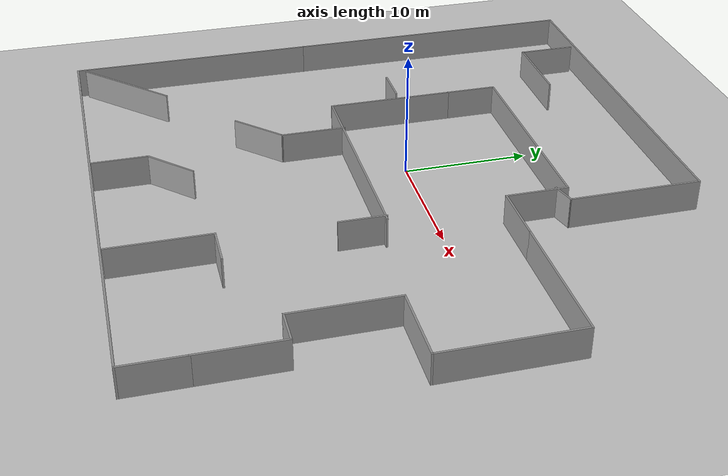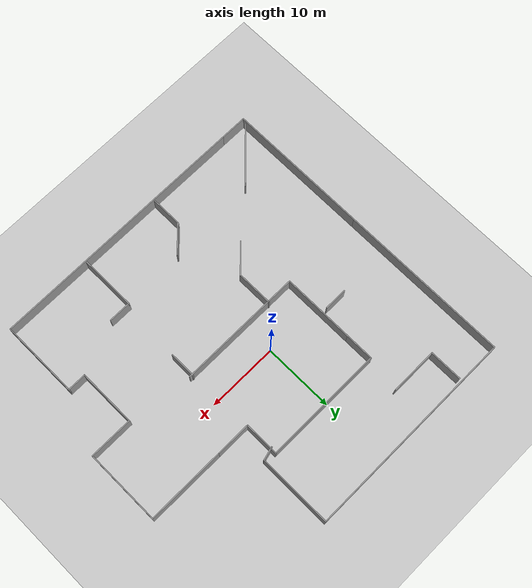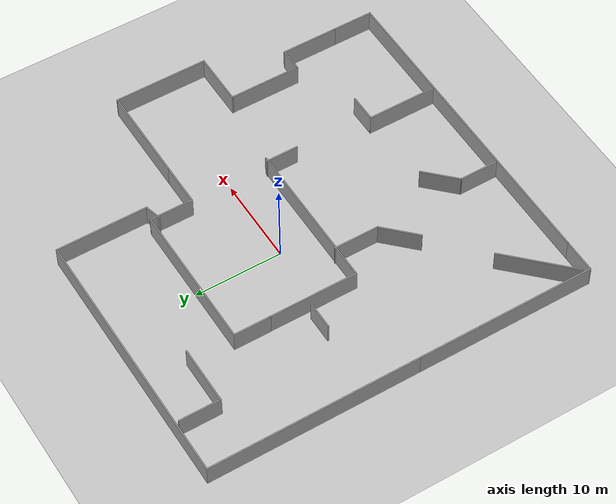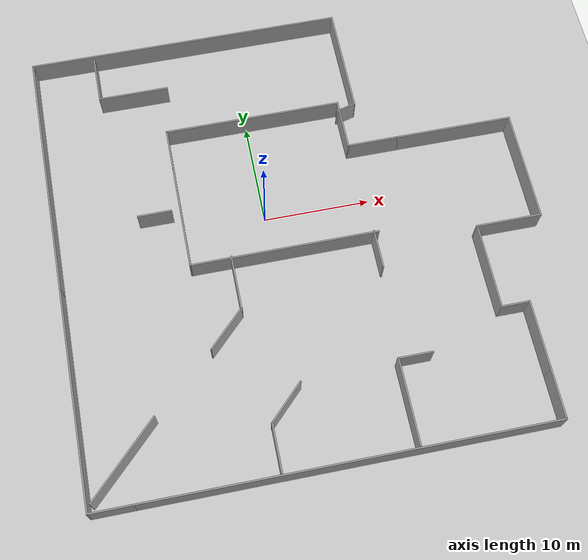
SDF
<sdf version="1.7">
 <world name="default">
  <light name="sun" type="directional">
   <pose>0 0 10 0 -0 0</pose>
   <diffuse>0.8 0.8 0.8 1</diffuse>
   <specular>0.2 0.2 0.2 1</specular>
   <attenuation>
    <range>1000</range>
    <constant>0.9</constant>
    <linear>0.01</linear>
    <quadratic>0.001</quadratic>
   </attenuation>
   <direction>-0.5 0.1 -0.9</direction>
   <spot><inner_angle>0</inner_angle><outer_angle>0</outer_angle><falloff>0</falloff></spot>
  </light>
  <model name="ground_plane">
   <static>1</static>
   <link name="link">
    <collision name="collision">
     <geometry><plane><normal>0 0 1</normal><size>100 100</size></plane></geometry>
     <surface><friction><ode><mu>100</mu><mu2>50</mu2></ode></friction></surface>
    </collision>
    <visual name="visual">
     <cast_shadows>0</cast_shadows>
     <geometry><plane><normal>0 0 1</normal><size>100 100</size></plane></geometry>
     <material>
      <script><uri>file://media/materials/scripts/gazebo.material</uri><name>Gazebo/Grey</name></script>
     </material>
    </visual>
   </link>
  </model>
  <gravity>0 0 -9.8</gravity>
  <magnetic_field>6e-06 2.3e-05 -4.2e-05</magnetic_field>
  <atmosphere type="adiabatic"/>
  <physics type="ode">
   <max_step_size>0.001</max_step_size>
   <real_time_factor>1</real_time_factor>
   <real_time_update_rate>1000</real_time_update_rate>
  </physics>
  <scene><ambient>0.4 0.4 0.4 1</ambient><background>0.7 0.7 0.7 1</background><shadows>1</shadows></scene>
  <audio><device>default</device></audio>
  <spherical_coordinates>
   <surface_model>EARTH_WGS84</surface_model>
   <latitude_deg>0</latitude_deg>
   <longitude_deg>0</longitude_deg>
   <elevation>0</elevation>
   <heading_deg>0</heading_deg>
  </spherical_coordinates>
  <model name="Untitled12">
   <pose>2.72702 -2.34983 0 0 -0 0</pose>
   <link name="Wall_11">
    <collision name="Wall_11_Collision">
     <geometry><box><size>11.25 0.15 2.5</size></box></geometry>
     <pose>0 0 1.25 0 -0 0</pose>
    </collision>
    <visual name="Wall_11_Visual">
     <pose>0 0 1.25 0 -0 0</pose>
     <geometry><box><size>11.25 0.15 2.5</size></box></geometry>
     <material>
      <script><uri>file://media/materials/scripts/gazebo.material</uri><name>Gazebo/Grey</name></script>
      <ambient>1 1 1 1</ambient>
     </material>
     <meta><layer>0</layer></meta>
    </visual>
    <pose>16.8 7.425 0 0 -0 0</pose>
   </link>
   <link name="Wall_12">
    <collision name="Wall_12_Collision">
     <geometry><box><size>10.75 0.15 2.5</size></box></geometry>
     <pose>0 0 1.25 0 -0 0</pose>
    </collision>
    <visual name="Wall_12_Visual">
     <pose>0 0 1.25 0 -0 0</pose>
     <geometry><box><size>10.75 0.15 2.5</size></box></geometry>
     <material>
      <script><uri>file://media/materials/scripts/gazebo.material</uri><name>Gazebo/Grey</name></script>
      <ambient>1 1 1 1</ambient>
     </material>
     <meta><layer>0</layer></meta>
    </visual>
    <pose>22.35 2.125 0 0 -0 -1.5708</pose>
   </link>
   <link name="Wall_13">
    <collision name="Wall_13_Collision">
     <geometry><box><size>6.25 0.15 2.5</size></box></geometry>
     <pose>0 0 1.25 0 -0 0</pose>
    </collision>
    <visual name="Wall_13_Visual">
     <pose>0 0 1.25 0 -0 0</pose>
     <geometry><box><size>6.25 0.15 2.5</size></box></geometry>
     <material>
      <script><uri>file://media/materials/scripts/gazebo.material</uri><name>Gazebo/Grey</name></script>
      <ambient>1 1 1 1</ambient>
     </material>
     <meta><layer>0</layer></meta>
    </visual>
    <pose>19.3 -3.175 0 0 -0 3.14159</pose>
   </link>
   <link name="Wall_14">
    <collision name="Wall_14_Collision">
     <geometry><box><size>8.25 0.15 2.5</size></box></geometry>
     <pose>0 0 1.25 0 -0 0</pose>
    </collision>
    <visual name="Wall_14_Visual">
     <pose>0 0 1.25 0 -0 0</pose>
     <geometry><box><size>8.25 0.15 2.5</size></box></geometry>
     <material>
      <script><uri>file://media/materials/scripts/gazebo.material</uri><name>Gazebo/Grey</name></script>
      <ambient>1 1 1 1</ambient>
     </material>
     <meta><layer>0</layer></meta>
    </visual>
    <pose>16.25 -7.225 0 0 -0 -1.5708</pose>
   </link>
   <link name="Wall_15">
    <collision name="Wall_15_Collision">
     <geometry><box><size>2.75 0.15 2.5</size></box></geometry>
     <pose>0 0 1.25 0 -0 0</pose>
    </collision>
    <visual name="Wall_15_Visual">
     <pose>0 0 1.25 0 -0 0</pose>
     <geometry><box><size>2.75 0.15 2.5</size></box></geometry>
     <material>
      <script><uri>file://media/materials/scripts/gazebo.material</uri><name>Gazebo/Grey</name></script>
      <ambient>1 1 1 1</ambient>
     </material>
     <meta><layer>0</layer></meta>
    </visual>
    <pose>17.55 -11.275 0 0 -0 0</pose>
   </link>
   <link name="Wall_16">
    <collision name="Wall_16_Collision">
     <geometry><box><size>6.5 0.15 2.5</size></box></geometry>
     <pose>0 0 1.25 0 -0 0</pose>
    </collision>
    <visual name="Wall_16_Visual">
     <pose>0 0 1.25 0 -0 0</pose>
     <geometry><box><size>6.5 0.15 2.5</size></box></geometry>
     <material>
      <script><uri>file://media/materials/scripts/gazebo.material</uri><name>Gazebo/Grey</name></script>
      <ambient>1 1 1 1</ambient>
     </material>
     <meta><layer>0</layer></meta>
    </visual>
    <pose>18.85 -14.45 0 0 -0 -1.5708</pose>
   </link>
   <link name="Wall_17">
    <collision name="Wall_17_Collision">
     <geometry><box><size>4.75 0.15 2.5</size></box></geometry>
     <pose>0 0 1.25 0 -0 0</pose>
    </collision>
    <visual name="Wall_17_Visual">
     <pose>0 0 1.25 0 -0 0</pose>
     <geometry><box><size>4.75 0.15 2.5</size></box></geometry>
     <material>
      <script><uri>file://media/materials/scripts/gazebo.material</uri><name>Gazebo/Grey</name></script>
      <ambient>1 1 1 1</ambient>
     </material>
     <meta><layer>0</layer></meta>
    </visual>
    <pose>18.85 -19.925 0 0 -0 -1.5708</pose>
   </link>
   <link name="Wall_18">
    <collision name="Wall_18_Collision">
     <geometry><box><size>37.5 0.15 2.5</size></box></geometry>
     <pose>0 0 1.25 0 -0 0</pose>
    </collision>
    <visual name="Wall_18_Visual">
     <pose>0 0 1.25 0 -0 0</pose>
     <geometry><box><size>37.5 0.15 2.5</size></box></geometry>
     <material>
      <script><uri>file://media/materials/scripts/gazebo.material</uri><name>Gazebo/Grey</name></script>
      <ambient>1 1 1 1</ambient>
     </material>
     <meta><layer>0</layer></meta>
    </visual>
    <pose>0.175 -22.225 0 0 -0 3.14159</pose>
   </link>
   <link name="Wall_2">
    <collision name="Wall_2_Collision">
     <geometry><box><size>10.25 0.15 2.5</size></box></geometry>
     <pose>0 0 1.25 0 -0 0</pose>
    </collision>
    <visual name="Wall_2_Visual">
     <pose>0 0 1.25 0 -0 0</pose>
     <geometry><box><size>10.25 0.15 2.5</size></box></geometry>
     <material>
      <script><uri>file://media/materials/scripts/gazebo.material</uri><name>Gazebo/Grey</name></script>
      <ambient>1 1 1 1</ambient>
     </material>
     <meta><layer>0</layer></meta>
    </visual>
    <pose>-10.45 3.125 0 0 -0 -1.5708</pose>
   </link>
   <link name="Wall_20">
    <collision name="Wall_20_Collision">
     <geometry><box><size>3.75 0.15 2.5</size></box></geometry>
     <pose>0 0 1.25 0 -0 0</pose>
    </collision>
    <visual name="Wall_20_Visual">
     <pose>0 0 1.25 0 -0 0</pose>
     <geometry><box><size>3.75 0.15 2.5</size></box></geometry>
     <material>
      <script><uri>file://media/materials/scripts/gazebo.material</uri><name>Gazebo/Grey</name></script>
      <ambient>1 1 1 1</ambient>
     </material>
     <meta><layer>0</layer></meta>
    </visual>
    <pose>6.7567 -3.62149 0 0 -0 -1.5708</pose>
   </link>
   <link name="Wall_22">
    <collision name="Wall_22_Collision">
     <geometry><box><size>4.5 0.15 2.5</size></box></geometry>
     <pose>0 0 1.25 0 -0 0</pose>
    </collision>
    <visual name="Wall_22_Visual">
     <pose>0 0 1.25 0 -0 0</pose>
     <geometry><box><size>4.5 0.15 2.5</size></box></geometry>
     <material>
      <script><uri>file://media/materials/scripts/gazebo.material</uri><name>Gazebo/Grey</name></script>
      <ambient>1 1 1 1</ambient>
     </material>
     <meta><layer>0</layer></meta>
    </visual>
    <pose>-5.90957 -19.8556 0 0 -0 1.5708</pose>
   </link>
   <link name="Wall_25">
    <collision name="Wall_25_Collision">
     <geometry><box><size>5.25 0.15 2.5</size></box></geometry>
     <pose>0 0 1.25 0 -0 0</pose>
    </collision>
    <visual name="Wall_25_Visual">
     <pose>0 0 1.25 0 -0 0</pose>
     <geometry><box><size>5.25 0.15 2.5</size></box></geometry>
     <material>
      <script><uri>file://media/materials/scripts/gazebo.material</uri><name>Gazebo/Grey</name></script>
      <ambient>1 1 1 1</ambient>
     </material>
     <meta><layer>0</layer></meta>
    </visual>
    <pose>-6.62116 -4.37149 0 0 -0 -1.5708</pose>
   </link>
   <link name="Wall_26">
    <collision name="Wall_26_Collision">
     <geometry><box><size>4.75 0.15 2.5</size></box></geometry>
     <pose>0 0 1.25 0 -0 0</pose>
    </collision>
    <visual name="Wall_26_Visual">
     <pose>0 0 1.25 0 -0 0</pose>
     <geometry><box><size>4.75 0.15 2.5</size></box></geometry>
     <material>
      <script><uri>file://media/materials/scripts/gazebo.material</uri><name>Gazebo/Grey</name></script>
      <ambient>1 1 1 1</ambient>
     </material>
     <meta><layer>0</layer></meta>
    </visual>
    <pose>-8.24751 -8.54784 0 0 -0 -2.35619</pose>
   </link>
   <link name="Wall_28">
    <collision name="Wall_28_Collision">
     <geometry><box><size>4.5 0.15 2.5</size></box></geometry>
     <pose>0 0 1.25 0 -0 0</pose>
    </collision>
    <visual name="Wall_28_Visual">
     <pose>0 0 1.25 0 -0 0</pose>
     <geometry><box><size>4.5 0.15 2.5</size></box></geometry>
     <material>
      <script><uri>file://media/materials/scripts/gazebo.material</uri><name>Gazebo/Grey</name></script>
      <ambient>1 1 1 1</ambient>
     </material>
     <meta><layer>0</layer></meta>
    </visual>
    <pose>-4.37162 -16.1427 0 0 -0 0.785398</pose>
   </link>
   <link name="Wall_3">
    <collision name="Wall_3_Collision">
     <geometry><box><size>17.75 0.15 2.5</size></box></geometry>
     <pose>0 0 1.25 0 -0 0</pose>
    </collision>
    <visual name="Wall_3_Visual">
     <pose>0 0 1.25 0 -0 0</pose>
     <geometry><box><size>17.75 0.15 2.5</size></box></geometry>
     <material>
      <script><uri>file://media/materials/scripts/gazebo.material</uri><name>Gazebo/Grey</name></script>
      <ambient>1 1 1 1</ambient>
     </material>
     <meta><layer>0</layer></meta>
    </visual>
    <pose>-1.65 -1.925 0 0 -0 0</pose>
   </link>
   <link name="Wall_30">
    <collision name="Wall_30_Collision">
     <geometry><box><size>4 0.15 2.5</size></box></geometry>
     <pose>0 0 1.25 0 -0 0</pose>
    </collision>
    <visual name="Wall_30_Visual">
     <pose>0 0 1.25 0 -0 0</pose>
     <geometry><box><size>4 0.15 2.5</size></box></geometry>
     <material>
      <script><uri>file://media/materials/scripts/gazebo.material</uri><name>Gazebo/Grey</name></script>
      <ambient>1 1 1 1</ambient>
     </material>
     <meta><layer>0</layer></meta>
    </visual>
    <pose>-20.425 -22.225 0 0 -0 3.14159</pose>
   </link>
   <link name="Wall_31">
    <collision name="Wall_31_Collision">
     <geometry><box><size>20.5 0.15 2.5</size></box></geometry>
     <pose>0 0 1.25 0 -0 0</pose>
    </collision>
    <visual name="Wall_31_Visual">
     <pose>0 0 1.25 0 -0 0</pose>
     <geometry><box><size>20.5 0.15 2.5</size></box></geometry>
     <material>
      <script><uri>file://media/materials/scripts/gazebo.material</uri><name>Gazebo/Grey</name></script>
      <ambient>1 1 1 1</ambient>
     </material>
     <meta><layer>0</layer></meta>
    </visual>
    <pose>-22.35 -12.05 0 0 -0 1.5708</pose>
   </link>
   <link name="Wall_32">
    <collision name="Wall_32_Collision">
     <geometry><box><size>24.25 0.15 2.5</size></box></geometry>
     <pose>0 0 1.25 0 -0 0</pose>
    </collision>
    <visual name="Wall_32_Visual">
     <pose>0 0 1.25 0 -0 0</pose>
     <geometry><box><size>24.25 0.15 2.5</size></box></geometry>
     <material>
      <script><uri>file://media/materials/scripts/gazebo.material</uri><name>Gazebo/Grey</name></script>
      <ambient>1 1 1 1</ambient>
     </material>
     <meta><layer>0</layer></meta>
    </visual>
    <pose>-22.35 10.175 0 0 -0 1.5708</pose>
   </link>
   <link name="Wall_33">
    <collision name="Wall_33_Collision">
     <geometry><box><size>30.5 0.15 2.5</size></box></geometry>
     <pose>0 0 1.25 0 -0 0</pose>
    </collision>
    <visual name="Wall_33_Visual">
     <pose>0 0 1.25 0 -0 0</pose>
     <geometry><box><size>30.5 0.15 2.5</size></box></geometry>
     <material>
      <script><uri>file://media/materials/scripts/gazebo.material</uri><name>Gazebo/Grey</name></script>
      <ambient>1 1 1 1</ambient>
     </material>
     <meta><layer>0</layer></meta>
    </visual>
    <pose>-7.175 22.225 0 0 -0 0</pose>
   </link>
   <link name="Wall_34">
    <collision name="Wall_34_Collision">
     <geometry><box><size>10.5 0.15 2.5</size></box></geometry>
     <pose>0 0 1.25 0 -0 0</pose>
    </collision>
    <visual name="Wall_34_Visual">
     <pose>0 0 1.25 0 -0 0</pose>
     <geometry><box><size>10.5 0.15 2.5</size></box></geometry>
     <material>
      <script><uri>file://media/materials/scripts/gazebo.material</uri><name>Gazebo/Grey</name></script>
      <ambient>1 1 1 1</ambient>
     </material>
     <meta><layer>0</layer></meta>
    </visual>
    <pose>8 17.05 0 0 -0 -1.5708</pose>
   </link>
   <link name="Wall_35">
    <collision name="Wall_35_Collision">
     <geometry><box><size>2 0.15 2.5</size></box></geometry>
     <pose>0 0 1.25 0 -0 0</pose>
    </collision>
    <visual name="Wall_35_Visual">
     <pose>0 0 1.25 0 -0 0</pose>
     <geometry><box><size>2 0.15 2.5</size></box></geometry>
     <material>
      <script><uri>file://media/materials/scripts/gazebo.material</uri><name>Gazebo/Grey</name></script>
      <ambient>1 1 1 1</ambient>
     </material>
     <meta><layer>0</layer></meta>
    </visual>
    <pose>7.10652 11.6356 0 0 -0 -2.87979</pose>
   </link>
   <link name="Wall_37">
    <collision name="Wall_37_Collision">
     <geometry><box><size>3.25 0.15 2.5</size></box></geometry>
     <pose>0 0 1.25 0 -0 0</pose>
    </collision>
    <visual name="Wall_37_Visual">
     <pose>0 0 1.25 0 -0 0</pose>
     <geometry><box><size>3.25 0.15 2.5</size></box></geometry>
     <material>
      <script><uri>file://media/materials/scripts/gazebo.material</uri><name>Gazebo/Grey</name></script>
      <ambient>1 1 1 1</ambient>
     </material>
     <meta><layer>0</layer></meta>
    </visual>
    <pose>-12.8676 3.87122 0 0 -0 3.14159</pose>
   </link>
   <link name="Wall_39">
    <collision name="Wall_39_Collision">
     <geometry><box><size>9 0.15 2.5</size></box></geometry>
     <pose>0 0 1.25 0 -0 0</pose>
    </collision>
    <visual name="Wall_39_Visual">
     <pose>0 0 1.25 0 -0 0</pose>
     <geometry><box><size>9 0.15 2.5</size></box></geometry>
     <material>
      <script><uri>file://media/materials/scripts/gazebo.material</uri><name>Gazebo/Grey</name></script>
      <ambient>1 1 1 1</ambient>
     </material>
     <meta><layer>0</layer></meta>
    </visual>
    <pose>-18.8625 -18.3324 0 0 -0 0.785398</pose>
   </link>
   <link name="Wall_41">
    <collision name="Wall_41_Collision">
     <geometry><box><size>4.75 0.15 2.5</size></box></geometry>
     <pose>0 0 1.25 0 -0 0</pose>
    </collision>
    <visual name="Wall_41_Visual">
     <pose>0 0 1.25 0 -0 0</pose>
     <geometry><box><size>4.75 0.15 2.5</size></box></geometry>
     <material>
      <script><uri>file://media/materials/scripts/gazebo.material</uri><name>Gazebo/Grey</name></script>
      <ambient>1 1 1 1</ambient>
     </material>
     <meta><layer>0</layer></meta>
    </visual>
    <pose>-16.2988 19.5033 0 0 -0 -1.5708</pose>
   </link>
   <link name="Wall_42">
    <collision name="Wall_42_Collision">
     <geometry><box><size>6.75 0.15 2.5</size></box></geometry>
     <pose>0 0 1.25 0 -0 0</pose>
    </collision>
    <visual name="Wall_42_Visual">
     <pose>0 0 1.25 0 -0 0</pose>
     <geometry><box><size>6.75 0.15 2.5</size></box></geometry>
     <material>
      <script><uri>file://media/materials/scripts/gazebo.material</uri><name>Gazebo/Grey</name></script>
      <ambient>1 1 1 1</ambient>
     </material>
     <meta><layer>0</layer></meta>
    </visual>
    <pose>-12.9988 17.2032 0 0 -0 0</pose>
   </link>
   <link name="Wall_45">
    <collision name="Wall_45_Collision">
     <geometry><box><size>8 0.15 2.5</size></box></geometry>
     <pose>0 0 1.25 0 -0 0</pose>
    </collision>
    <visual name="Wall_45_Visual">
     <pose>0 0 1.25 0 -0 0</pose>
     <geometry><box><size>8 0.15 2.5</size></box></geometry>
     <material>
      <script><uri>file://media/materials/scripts/gazebo.material</uri><name>Gazebo/Grey</name></script>
      <ambient>1 1 1 1</ambient>
     </material>
     <meta><layer>0</layer></meta>
    </visual>
    <pose>6.04512 -18.1056 0 0 -0 1.5708</pose>
   </link>
   <link name="Wall_46">
    <collision name="Wall_46_Collision">
     <geometry><box><size>3.25 0.15 2.5</size></box></geometry>
     <pose>0 0 1.25 0 -0 0</pose>
    </collision>
    <visual name="Wall_46_Visual">
     <pose>0 0 1.25 0 -0 0</pose>
     <geometry><box><size>3.25 0.15 2.5</size></box></geometry>
     <material>
      <script><uri>file://media/materials/scripts/gazebo.material</uri><name>Gazebo/Grey</name></script>
      <ambient>1 1 1 1</ambient>
     </material>
     <meta><layer>0</layer></meta>
    </visual>
    <pose>7.59512 -14.1806 0 0 -0 0</pose>
   </link>
   <link name="Wall_5">
    <collision name="Wall_5_Collision">
     <geometry><box><size>4.25 0.15 2.5</size></box></geometry>
     <pose>0 0 1.25 0 -0 0</pose>
    </collision>
    <visual name="Wall_5_Visual">
     <pose>0 0 1.25 0 -0 0</pose>
     <geometry><box><size>4.25 0.15 2.5</size></box></geometry>
     <material>
      <script><uri>file://media/materials/scripts/gazebo.material</uri><name>Gazebo/Grey</name></script>
      <ambient>1 1 1 1</ambient>
     </material>
     <meta><layer>0</layer></meta>
    </visual>
    <pose>-10.45 10.225 0 0 -0 1.5708</pose>
   </link>
   <link name="Wall_6">
    <collision name="Wall_6_Collision">
     <geometry><box><size>17 0.15 2.5</size></box></geometry>
     <pose>0 0 1.25 0 -0 0</pose>
    </collision>
    <visual name="Wall_6_Visual">
     <pose>0 0 1.25 0 -0 0</pose>
     <geometry><box><size>17 0.15 2.5</size></box></geometry>
     <material>
      <script><uri>file://media/materials/scripts/gazebo.material</uri><name>Gazebo/Grey</name></script>
      <ambient>1 1 1 1</ambient>
     </material>
     <meta><layer>0</layer></meta>
    </visual>
    <pose>-2.025 12.275 0 0 -0 0</pose>
   </link>
   <link name="Wall_7">
    <collision name="Wall_7_Collision">
     <geometry><box><size>5 0.15 2.5</size></box></geometry>
     <pose>0 0 1.25 0 -0 0</pose>
    </collision>
    <visual name="Wall_7_Visual">
     <pose>0 0 1.25 0 -0 0</pose>
     <geometry><box><size>5 0.15 2.5</size></box></geometry>
     <material>
      <script><uri>file://media/materials/scripts/gazebo.material</uri><name>Gazebo/Grey</name></script>
      <ambient>1 1 1 1</ambient>
     </material>
     <meta><layer>0</layer></meta>
    </visual>
    <pose>6.4 9.85 0 0 -0 -1.5708</pose>
   </link>
   <link name="Wall_9">
    <collision name="Wall_9_Collision">
     <geometry><box><size>5 0.15 2.5</size></box></geometry>
     <pose>0 0 1.25 0 -0 0</pose>
    </collision>
    <visual name="Wall_9_Visual">
     <pose>0 0 1.25 0 -0 0</pose>
     <geometry><box><size>5 0.15 2.5</size></box></geometry>
     <material>
      <script><uri>file://media/materials/scripts/gazebo.material</uri><name>Gazebo/Grey</name></script>
      <ambient>1 1 1 1</ambient>
     </material>
     <meta><layer>0</layer></meta>
    </visual>
    <pose>8.825 7.425 0 0 -0 0</pose>
   </link>
   <static>1</static>
  </model>
 </world>
</sdf>
